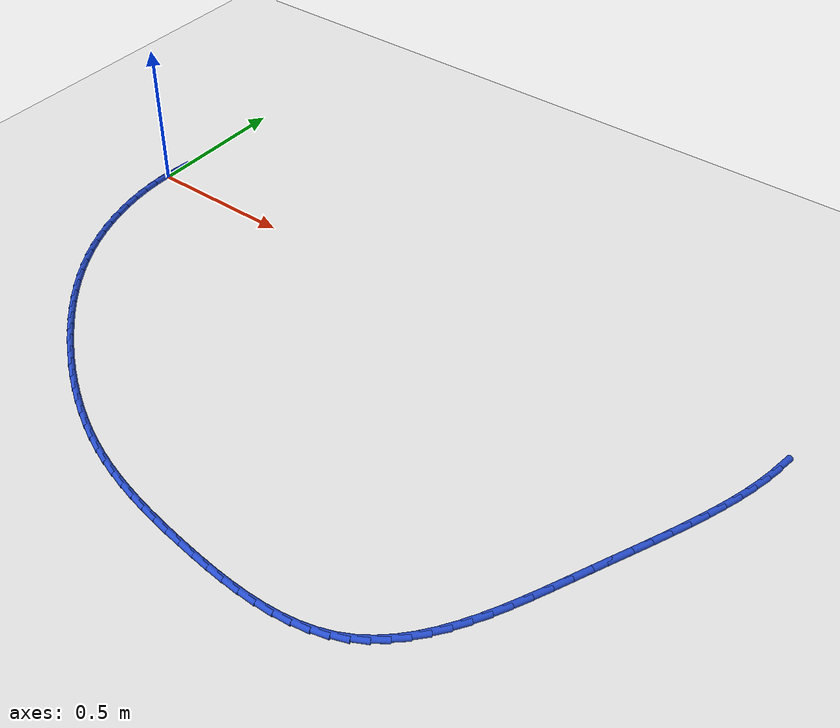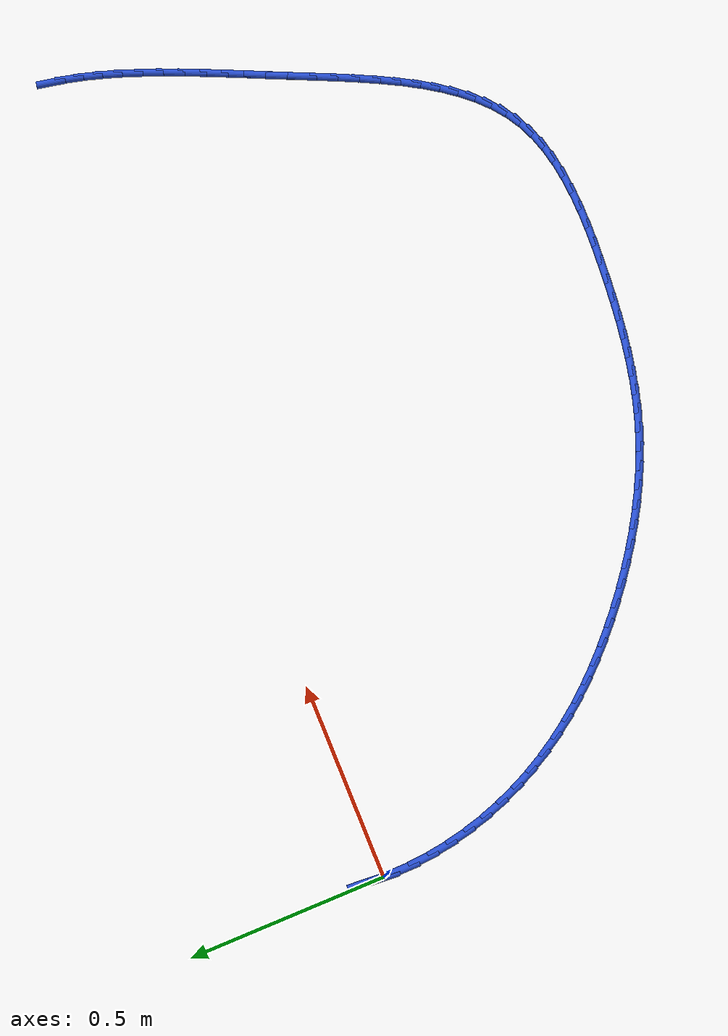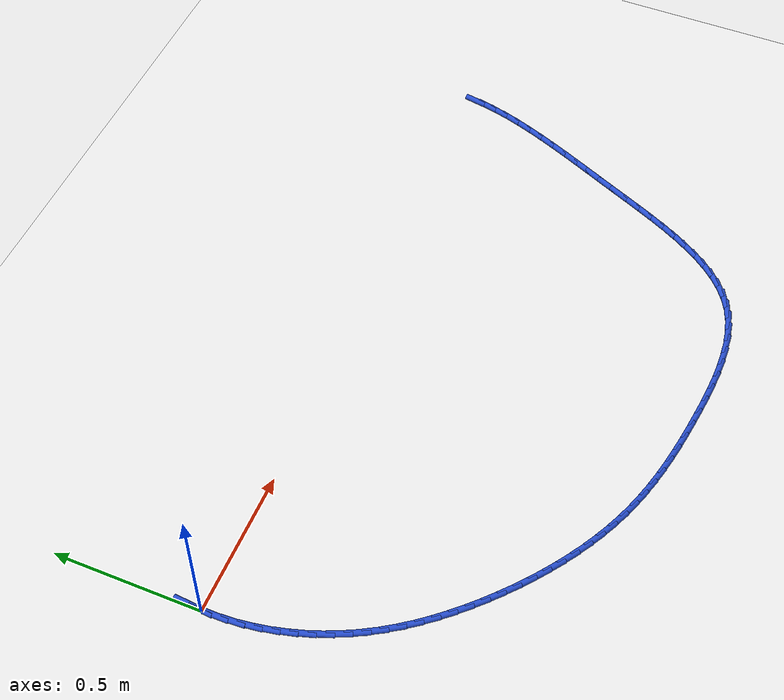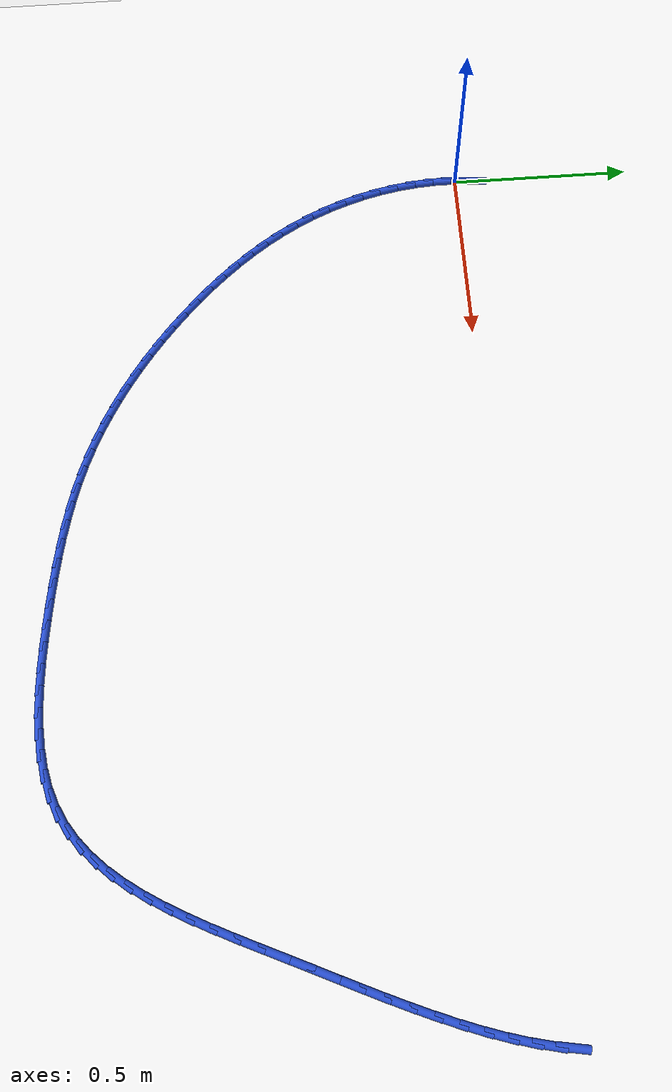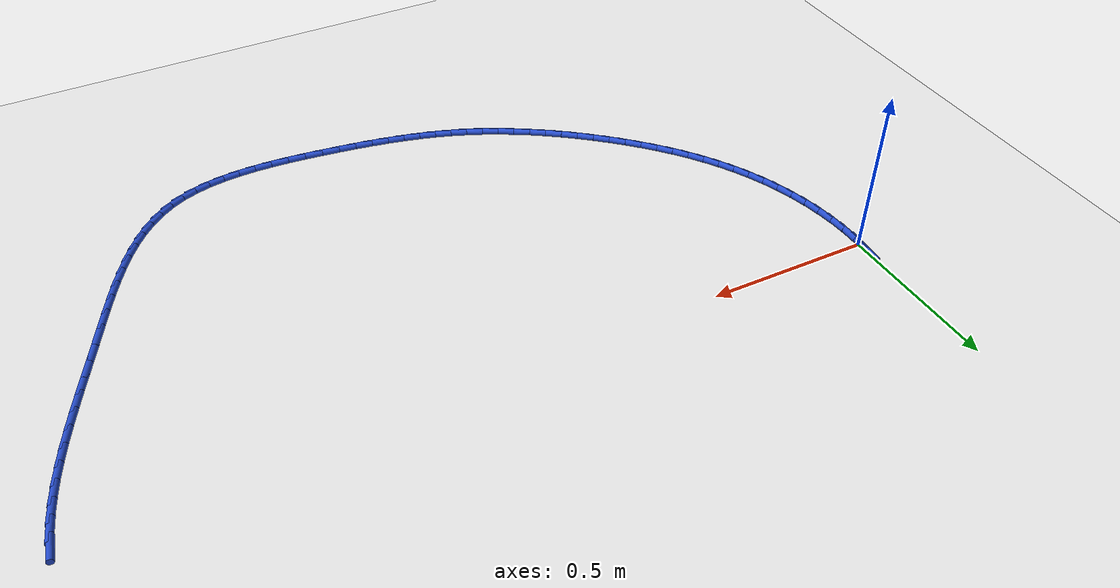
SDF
<sdf version="1.6">
 <world name="default">
  <model name="ground_plane">
   <static>1</static>
   <link name="link">
    <collision name="collision">
     <geometry><plane><normal>0 0 1</normal><size>100 100</size></plane></geometry>
     <surface><friction><ode><mu>100</mu><mu2>50</mu2></ode></friction></surface>
    </collision>
    <visual name="visual">
     <cast_shadows>0</cast_shadows>
     <geometry><plane><normal>0 0 1</normal><size>100 100</size></plane></geometry>
     <material>
      <script><uri>file://media/materials/scripts/gazebo.material</uri><name>Gazebo/WhiteGlow</name></script>
     </material>
    </visual>
   </link>
  </model>
  <model name="line">
   <link name="link_0">
    <pose>2.42861286636753e-17 1.249000902703301e-16 0.01 0 1.57 1.502286264619102</pose>
    <collision name="collision">
     <geometry><cylinder><radius>0.01</radius><length>0.08</length></cylinder></geometry>
    </collision>
    <visual name="visual">
     <material>
      <script><name>Gazebo/Blue</name><uri>file://media/materials/scripts/gazebo.material</uri></script>
     </material>
     <geometry><cylinder><radius>0.01</radius><length>0.08</length></cylinder></geometry>
    </visual>
   </link>
   <link name="link_72">
    <pose>2.3132417788690716 0.02636627715326527 0.01 0 1.57 1.3954809518263236</pose>
    <collision name="collision">
     <geometry><cylinder><radius>0.01</radius><length>0.08</length></cylinder></geometry>
    </collision>
    <visual name="visual">
     <material>
      <script><name>Gazebo/Blue</name><uri>file://media/materials/scripts/gazebo.material</uri></script>
     </material>
     <geometry><cylinder><radius>0.01</radius><length>0.08</length></cylinder></geometry>
    </visual>
   </link>
   <link name="link_73">
    <pose>2.3043299108060014 -0.023945208164076956 0.01 0 1.57 1.3374802903065772</pose>
    <collision name="collision">
     <geometry><cylinder><radius>0.01</radius><length>0.08</length></cylinder></geometry>
    </collision>
    <visual name="visual">
     <material>
      <script><name>Gazebo/Blue</name><uri>file://media/materials/scripts/gazebo.material</uri></script>
     </material>
     <geometry><cylinder><radius>0.01</radius><length>0.08</length></cylinder></geometry>
    </visual>
   </link>
   <link name="link_74">
    <pose>2.2921069334821587 -0.0753792068289258 0.01 0 1.57 1.2891854659725064</pose>
    <collision name="collision">
     <geometry><cylinder><radius>0.01</radius><length>0.08</length></cylinder></geometry>
    </collision>
    <visual name="visual">
     <material>
      <script><name>Gazebo/Blue</name><uri>file://media/materials/scripts/gazebo.material</uri></script>
     </material>
     <geometry><cylinder><radius>0.01</radius><length>0.08</length></cylinder></geometry>
    </visual>
   </link>
   <link name="link_75">
    <pose>2.2769422155082153 -0.12779801154724507 0.01 0 1.57 1.2493535060694492</pose>
    <collision name="collision">
     <geometry><cylinder><radius>0.01</radius><length>0.08</length></cylinder></geometry>
    </collision>
    <visual name="visual">
     <material>
      <script><name>Gazebo/Blue</name><uri>file://media/materials/scripts/gazebo.material</uri></script>
     </material>
     <geometry><cylinder><radius>0.01</radius><length>0.08</length></cylinder></geometry>
    </visual>
   </link>
   <link name="link_76">
    <pose>2.2592051254948413 -0.18106391502499786 0.01 0 1.57 1.2169178602378736</pose>
    <collision name="collision">
     <geometry><cylinder><radius>0.01</radius><length>0.08</length></cylinder></geometry>
    </collision>
    <visual name="visual">
     <material>
      <script><name>Gazebo/Blue</name><uri>file://media/materials/scripts/gazebo.material</uri></script>
     </material>
     <geometry><cylinder><radius>0.01</radius><length>0.08</length></cylinder></geometry>
    </visual>
   </link>
   <link name="link_77">
    <pose>2.2392650320527085 -0.23503920996814717 0.01 0 1.57 1.1910023412791821</pose>
    <collision name="collision">
     <geometry><cylinder><radius>0.01</radius><length>0.08</length></cylinder></geometry>
    </collision>
    <visual name="visual">
     <material>
      <script><name>Gazebo/Blue</name><uri>file://media/materials/scripts/gazebo.material</uri></script>
     </material>
     <geometry><cylinder><radius>0.01</radius><length>0.08</length></cylinder></geometry>
    </visual>
   </link>
   <link name="link_78">
    <pose>2.217491303792488 -0.28958618908265676 0.01 0 1.57 1.1709133052564993</pose>
    <collision name="collision">
     <geometry><cylinder><radius>0.01</radius><length>0.08</length></cylinder></geometry>
    </collision>
    <visual name="visual">
     <material>
      <script><name>Gazebo/Blue</name><uri>file://media/materials/scripts/gazebo.material</uri></script>
     </material>
     <geometry><cylinder><radius>0.01</radius><length>0.08</length></cylinder></geometry>
    </visual>
   </link>
   <link name="link_79">
    <pose>2.1942533093248504 -0.34456714507448793 0.01 0 1.57 1.1561240657351564</pose>
    <collision name="collision">
     <geometry><cylinder><radius>0.01</radius><length>0.08</length></cylinder></geometry>
    </collision>
    <visual name="visual">
     <material>
      <script><name>Gazebo/Blue</name><uri>file://media/materials/scripts/gazebo.material</uri></script>
     </material>
     <geometry><cylinder><radius>0.01</radius><length>0.08</length></cylinder></geometry>
    </visual>
   </link>
   <link name="link_80">
    <pose>2.169920417260469 -0.39984437064960454 0.01 0 1.57 1.1462588013819728</pose>
    <collision name="collision">
     <geometry><cylinder><radius>0.01</radius><length>0.08</length></cylinder></geometry>
    </collision>
    <visual name="visual">
     <material>
      <script><name>Gazebo/Blue</name><uri>file://media/materials/scripts/gazebo.material</uri></script>
     </material>
     <geometry><cylinder><radius>0.01</radius><length>0.08</length></cylinder></geometry>
    </visual>
   </link>
   <link name="link_81">
    <pose>2.1448619962100133 -0.45528015851396975 0.01 0 1.57 1.1410794474713768</pose>
    <collision name="collision">
     <geometry><cylinder><radius>0.01</radius><length>0.08</length></cylinder></geometry>
    </collision>
    <visual name="visual">
     <material>
      <script><name>Gazebo/Blue</name><uri>file://media/materials/scripts/gazebo.material</uri></script>
     </material>
     <geometry><cylinder><radius>0.01</radius><length>0.08</length></cylinder></geometry>
    </visual>
   </link>
   <link name="link_82">
    <pose>2.119447414784155 -0.5107368013735474 0.01 0 1.57 1.1404771448761992</pose>
    <collision name="collision">
     <geometry><cylinder><radius>0.01</radius><length>0.08</length></cylinder></geometry>
    </collision>
    <visual name="visual">
     <material>
      <script><name>Gazebo/Blue</name><uri>file://media/materials/scripts/gazebo.material</uri></script>
     </material>
     <geometry><cylinder><radius>0.01</radius><length>0.08</length></cylinder></geometry>
    </visual>
   </link>
   <link name="link_83">
    <pose>2.094046041593566 -0.5660765919342985 0.01 0 1.57 1.1437506375032513</pose>
    <collision name="collision">
     <geometry><cylinder><radius>0.01</radius><length>0.08</length></cylinder></geometry>
    </collision>
    <visual name="visual">
     <material>
      <script><name>Gazebo/Blue</name><uri>file://media/materials/scripts/gazebo.material</uri></script>
     </material>
     <geometry><cylinder><radius>0.01</radius><length>0.08</length></cylinder></geometry>
    </visual>
   </link>
   <link name="link_84">
    <pose>2.068986537868381 -0.6211463544181676 0.01 0 1.57 1.1438352347236482</pose>
    <collision name="collision">
     <geometry><cylinder><radius>0.01</radius><length>0.08</length></cylinder></geometry>
    </collision>
    <visual name="visual">
     <material>
      <script><name>Gazebo/Blue</name><uri>file://media/materials/scripts/gazebo.material</uri></script>
     </material>
     <geometry><cylinder><radius>0.01</radius><length>0.08</length></cylinder></geometry>
    </visual>
   </link>
   <link name="link_85">
    <pose>2.0441948185654875 -0.6756398726350197 0.01 0 1.57 1.1364705656015068</pose>
    <collision name="collision">
     <geometry><cylinder><radius>0.01</radius><length>0.08</length></cylinder></geometry>
    </collision>
    <visual name="visual">
     <material>
      <script><name>Gazebo/Blue</name><uri>file://media/materials/scripts/gazebo.material</uri></script>
     </material>
     <geometry><cylinder><radius>0.01</radius><length>0.08</length></cylinder></geometry>
    </visual>
   </link>
   <link name="link_86">
    <pose>2.019366931641542 -0.7291635827449101 0.01 0 1.57 1.1211870631974363</pose>
    <collision name="collision">
     <geometry><cylinder><radius>0.01</radius><length>0.08</length></cylinder></geometry>
    </collision>
    <visual name="visual">
     <material>
      <script><name>Gazebo/Blue</name><uri>file://media/materials/scripts/gazebo.material</uri></script>
     </material>
     <geometry><cylinder><radius>0.01</radius><length>0.08</length></cylinder></geometry>
    </visual>
   </link>
   <link name="link_87">
    <pose>1.9941962403137101 -0.7813229007280312 0.01 0 1.57 1.0973566188363908</pose>
    <collision name="collision">
     <geometry><cylinder><radius>0.01</radius><length>0.08</length></cylinder></geometry>
    </collision>
    <visual name="visual">
     <material>
      <script><name>Gazebo/Blue</name><uri>file://media/materials/scripts/gazebo.material</uri></script>
     </material>
     <geometry><cylinder><radius>0.01</radius><length>0.08</length></cylinder></geometry>
    </visual>
   </link>
   <link name="link_88">
    <pose>1.9683761077991582 -0.8317232425645725 0.01 0 1.57 1.064134388265504</pose>
    <collision name="collision">
     <geometry><cylinder><radius>0.01</radius><length>0.08</length></cylinder></geometry>
    </collision>
    <visual name="visual">
     <material>
      <script><name>Gazebo/Blue</name><uri>file://media/materials/scripts/gazebo.material</uri></script>
     </material>
     <geometry><cylinder><radius>0.01</radius><length>0.08</length></cylinder></geometry>
    </visual>
   </link>
   <link name="link_89">
    <pose>1.941599897315051 -0.8799700242347265 0.01 0 1.57 1.0204647552105088</pose>
    <collision name="collision">
     <geometry><cylinder><radius>0.01</radius><length>0.08</length></cylinder></geometry>
    </collision>
    <visual name="visual">
     <material>
      <script><name>Gazebo/Blue</name><uri>file://media/materials/scripts/gazebo.material</uri></script>
     </material>
     <geometry><cylinder><radius>0.01</radius><length>0.08</length></cylinder></geometry>
    </visual>
   </link>
   <link name="link_90">
    <pose>1.913560972078554 -0.925668661718684 0.01 0 1.57 0.9651246847590658</pose>
    <collision name="collision">
     <geometry><cylinder><radius>0.01</radius><length>0.08</length></cylinder></geometry>
    </collision>
    <visual name="visual">
     <material>
      <script><name>Gazebo/Blue</name><uri>file://media/materials/scripts/gazebo.material</uri></script>
     </material>
     <geometry><cylinder><radius>0.01</radius><length>0.08</length></cylinder></geometry>
    </visual>
   </link>
   <link name="link_91">
    <pose>1.8839526953068322 -0.968424570996638 0.01 0 1.57 0.8968387875746343</pose>
    <collision name="collision">
     <geometry><cylinder><radius>0.01</radius><length>0.08</length></cylinder></geometry>
    </collision>
    <visual name="visual">
     <material>
      <script><name>Gazebo/Blue</name><uri>file://media/materials/scripts/gazebo.material</uri></script>
     </material>
     <geometry><cylinder><radius>0.01</radius><length>0.08</length></cylinder></geometry>
    </visual>
   </link>
   <link name="link_92">
    <pose>1.8524684302170527 -1.0078431680487778 0.01 0 1.57 0.814513308395862</pose>
    <collision name="collision">
     <geometry><cylinder><radius>0.01</radius><length>0.08</length></cylinder></geometry>
    </collision>
    <visual name="visual">
     <material>
      <script><name>Gazebo/Blue</name><uri>file://media/materials/scripts/gazebo.material</uri></script>
     </material>
     <geometry><cylinder><radius>0.01</radius><length>0.08</length></cylinder></geometry>
    </visual>
   </link>
   <link name="link_93">
    <pose>1.8188015400263784 -1.0435298688552954 0.01 0 1.57 0.7176317735627801</pose>
    <collision name="collision">
     <geometry><cylinder><radius>0.01</radius><length>0.08</length></cylinder></geometry>
    </collision>
    <visual name="visual">
     <material>
      <script><name>Gazebo/Blue</name><uri>file://media/materials/scripts/gazebo.material</uri></script>
     </material>
     <geometry><cylinder><radius>0.01</radius><length>0.08</length></cylinder></geometry>
    </visual>
   </link>
   <link name="link_94">
    <pose>1.782645387951977 -1.075090089396383 0.01 0 1.57 0.6067992156913515</pose>
    <collision name="collision">
     <geometry><cylinder><radius>0.01</radius><length>0.08</length></cylinder></geometry>
    </collision>
    <visual name="visual">
     <material>
      <script><name>Gazebo/Blue</name><uri>file://media/materials/scripts/gazebo.material</uri></script>
     </material>
     <geometry><cylinder><radius>0.01</radius><length>0.08</length></cylinder></geometry>
    </visual>
   </link>
   <link name="link_95">
    <pose>1.7436933372110122 -1.1021292456522316 0.01 0 1.57 0.4842849290200689</pose>
    <collision name="collision">
     <geometry><cylinder><radius>0.01</radius><length>0.08</length></cylinder></geometry>
    </collision>
    <visual name="visual">
     <material>
      <script><name>Gazebo/Blue</name><uri>file://media/materials/scripts/gazebo.material</uri></script>
     </material>
     <geometry><cylinder><radius>0.01</radius><length>0.08</length></cylinder></geometry>
    </visual>
   </link>
   <link name="link_96">
    <pose>1.7016388225276926 -1.124252836935228 0.01 0 1.57 0.3591166905997008</pose>
    <collision name="collision">
     <geometry><cylinder><radius>0.01</radius><length>0.08</length></cylinder></geometry>
    </collision>
    <visual name="visual">
     <material>
      <script><name>Gazebo/Blue</name><uri>file://media/materials/scripts/gazebo.material</uri></script>
     </material>
     <geometry><cylinder><radius>0.01</radius><length>0.08</length></cylinder></geometry>
    </visual>
   </link>
   <link name="link_97">
    <pose>1.6563396444833514 -1.141257909676891 0.01 0 1.57 0.2496820367132497</pose>
    <collision name="collision">
     <geometry><cylinder><radius>0.01</radius><length>0.08</length></cylinder></geometry>
    </collision>
    <visual name="visual">
     <material>
      <script><name>Gazebo/Blue</name><uri>file://media/materials/scripts/gazebo.material</uri></script>
     </material>
     <geometry><cylinder><radius>0.01</radius><length>0.08</length></cylinder></geometry>
    </visual>
   </link>
   <link name="link_98">
    <pose>1.6081686077029633 -1.1535416808223988 0.01 0 1.57 0.15838147728008006</pose>
    <collision name="collision">
     <geometry><cylinder><radius>0.01</radius><length>0.08</length></cylinder></geometry>
    </collision>
    <visual name="visual">
     <material>
      <script><name>Gazebo/Blue</name><uri>file://media/materials/scripts/gazebo.material</uri></script>
     </material>
     <geometry><cylinder><radius>0.01</radius><length>0.08</length></cylinder></geometry>
    </visual>
   </link>
   <link name="link_99">
    <pose>1.5575991143959245 -1.161618600772979 0.01 0 1.57 0.08332991020287756</pose>
    <collision name="collision">
     <geometry><cylinder><radius>0.01</radius><length>0.08</length></cylinder></geometry>
    </collision>
    <visual name="visual">
     <material>
      <script><name>Gazebo/Blue</name><uri>file://media/materials/scripts/gazebo.material</uri></script>
     </material>
     <geometry><cylinder><radius>0.01</radius><length>0.08</length></cylinder></geometry>
    </visual>
   </link>
   <link name="link_100">
    <pose>1.5051045667716298 -1.1660031199298584 0.01 0 1.57 0.02236242103384555</pose>
    <collision name="collision">
     <geometry><cylinder><radius>0.01</radius><length>0.08</length></cylinder></geometry>
    </collision>
    <visual name="visual">
     <material>
      <script><name>Gazebo/Blue</name><uri>file://media/materials/scripts/gazebo.material</uri></script>
     </material>
     <geometry><cylinder><radius>0.01</radius><length>0.08</length></cylinder></geometry>
    </visual>
   </link>
   <link name="link_101">
    <pose>1.4511583670394768 -1.1672096886942647 0.01 0 1.57 -0.026519877131066245</pose>
    <collision name="collision">
     <geometry><cylinder><radius>0.01</radius><length>0.08</length></cylinder></geometry>
    </collision>
    <visual name="visual">
     <material>
      <script><name>Gazebo/Blue</name><uri>file://media/materials/scripts/gazebo.material</uri></script>
     </material>
     <geometry><cylinder><radius>0.01</radius><length>0.08</length></cylinder></geometry>
    </visual>
   </link>
   <link name="link_102">
    <pose>1.3962339174088603 -1.165752757467424 0.01 0 1.57 -0.06496395895952128</pose>
    <collision name="collision">
     <geometry><cylinder><radius>0.01</radius><length>0.08</length></cylinder></geometry>
    </collision>
    <visual name="visual">
     <material>
      <script><name>Gazebo/Blue</name><uri>file://media/materials/scripts/gazebo.material</uri></script>
     </material>
     <geometry><cylinder><radius>0.01</radius><length>0.08</length></cylinder></geometry>
    </visual>
   </link>
   <link name="link_103">
    <pose>1.3408046200891761 -1.1621467766505644 0.01 0 1.57 -0.09421197071604645</pose>
    <collision name="collision">
     <geometry><cylinder><radius>0.01</radius><length>0.08</length></cylinder></geometry>
    </collision>
    <visual name="visual">
     <material>
      <script><name>Gazebo/Blue</name><uri>file://media/materials/scripts/gazebo.material</uri></script>
     </material>
     <geometry><cylinder><radius>0.01</radius><length>0.08</length></cylinder></geometry>
    </visual>
   </link>
   <link name="link_104">
    <pose>1.2853438772898191 -1.1569061966449121 0.01 0 1.57 -0.11509914746075227</pose>
    <collision name="collision">
     <geometry><cylinder><radius>0.01</radius><length>0.08</length></cylinder></geometry>
    </collision>
    <visual name="visual">
     <material>
      <script><name>Gazebo/Blue</name><uri>file://media/materials/scripts/gazebo.material</uri></script>
     </material>
     <geometry><cylinder><radius>0.01</radius><length>0.08</length></cylinder></geometry>
    </visual>
   </link>
   <link name="link_105">
    <pose>1.2303250912201875 -1.1505454678516953 0.01 0 1.57 -0.12960272391324787</pose>
    <collision name="collision">
     <geometry><cylinder><radius>0.01</radius><length>0.08</length></cylinder></geometry>
    </collision>
    <visual name="visual">
     <material>
      <script><name>Gazebo/Blue</name><uri>file://media/materials/scripts/gazebo.material</uri></script>
     </material>
     <geometry><cylinder><radius>0.01</radius><length>0.08</length></cylinder></geometry>
    </visual>
   </link>
   <link name="link_106">
    <pose>1.17615592100883 -1.143485422627199 0.01 0 1.57 -0.1458395893285195</pose>
    <collision name="collision">
     <geometry><cylinder><radius>0.01</radius><length>0.08</length></cylinder></geometry>
    </collision>
    <visual name="visual">
     <material>
      <script><name>Gazebo/Blue</name><uri>file://media/materials/scripts/gazebo.material</uri></script>
     </material>
     <geometry><cylinder><radius>0.01</radius><length>0.08</length></cylinder></geometry>
    </visual>
   </link>
   <link name="link_107">
    <pose>1.1229047471289777 -1.1356637610498665 0.01 0 1.57 -0.16648574411661318</pose>
    <collision name="collision">
     <geometry><cylinder><radius>0.01</radius><length>0.08</length></cylinder></geometry>
    </collision>
    <visual name="visual">
     <material>
      <script><name>Gazebo/Blue</name><uri>file://media/materials/scripts/gazebo.material</uri></script>
     </material>
     <geometry><cylinder><radius>0.01</radius><length>0.08</length></cylinder></geometry>
    </visual>
   </link>
   <link name="link_108">
    <pose>1.0705308218298983 -1.126862784776831 0.01 0 1.57 -0.1916158530445746</pose>
    <collision name="collision">
     <geometry><cylinder><radius>0.01</radius><length>0.08</length></cylinder></geometry>
    </collision>
    <visual name="visual">
     <material>
      <script><name>Gazebo/Blue</name><uri>file://media/materials/scripts/gazebo.material</uri></script>
     </material>
     <geometry><cylinder><radius>0.01</radius><length>0.08</length></cylinder></geometry>
    </visual>
   </link>
   <link name="link_109">
    <pose>1.0189933455149043 -1.116864721636668 0.01 0 1.57 -0.22123961773968273</pose>
    <collision name="collision">
     <geometry><cylinder><radius>0.01</radius><length>0.08</length></cylinder></geometry>
    </collision>
    <visual name="visual">
     <material>
      <script><name>Gazebo/Blue</name><uri>file://media/materials/scripts/gazebo.material</uri></script>
     </material>
     <geometry><cylinder><radius>0.01</radius><length>0.08</length></cylinder></geometry>
    </visual>
   </link>
   <link name="link_110">
    <pose>0.9682515185873097 -1.105451799457953 0.01 0 1.57 -0.2552848888326911</pose>
    <collision name="collision">
     <geometry><cylinder><radius>0.01</radius><length>0.08</length></cylinder></geometry>
    </collision>
    <visual name="visual">
     <material>
      <script><name>Gazebo/Blue</name><uri>file://media/materials/scripts/gazebo.material</uri></script>
     </material>
     <geometry><cylinder><radius>0.01</radius><length>0.08</length></cylinder></geometry>
    </visual>
   </link>
   <link name="link_111">
    <pose>0.9182645414504276 -1.0924062460692618 0.01 0 1.57 -0.2935795127065285</pose>
    <collision name="collision">
     <geometry><cylinder><radius>0.01</radius><length>0.08</length></cylinder></geometry>
    </collision>
    <visual name="visual">
     <material>
      <script><name>Gazebo/Blue</name><uri>file://media/materials/scripts/gazebo.material</uri></script>
     </material>
     <geometry><cylinder><radius>0.01</radius><length>0.08</length></cylinder></geometry>
    </visual>
   </link>
   <link name="link_112">
    <pose>0.8689916145075708 -1.0775102892991693 0.01 0 1.57 -0.3358358608013091</pose>
    <collision name="collision">
     <geometry><cylinder><radius>0.01</radius><length>0.08</length></cylinder></geometry>
    </collision>
    <visual name="visual">
     <material>
      <script><name>Gazebo/Blue</name><uri>file://media/materials/scripts/gazebo.material</uri></script>
     </material>
     <geometry><cylinder><radius>0.01</radius><length>0.08</length></cylinder></geometry>
    </visual>
   </link>
   <link name="link_113">
    <pose>0.8203919381620521 -1.0605461569762509 0.01 0 1.57 -0.38125026860275857</pose>
    <collision name="collision">
     <geometry><cylinder><radius>0.01</radius><length>0.08</length></cylinder></geometry>
    </collision>
    <visual name="visual">
     <material>
      <script><name>Gazebo/Blue</name><uri>file://media/materials/scripts/gazebo.material</uri></script>
     </material>
     <geometry><cylinder><radius>0.01</radius><length>0.08</length></cylinder></geometry>
    </visual>
   </link>
   <link name="link_114">
    <pose>0.7724314255342196 -1.0413205537952213 0.01 0 1.57 -0.4261205689249158</pose>
    <collision name="collision">
     <geometry><cylinder><radius>0.01</radius><length>0.08</length></cylinder></geometry>
    </collision>
    <visual name="visual">
     <material>
      <script><name>Gazebo/Blue</name><uri>file://media/materials/scripts/gazebo.material</uri></script>
     </material>
     <geometry><cylinder><radius>0.01</radius><length>0.08</length></cylinder></geometry>
    </visual>
   </link>
   <link name="link_115">
    <pose>0.7251336672103683 -1.0198504962524255 0.01 0 1.57 -0.46877521096440844</pose>
    <collision name="collision">
     <geometry><cylinder><radius>0.01</radius><length>0.08</length></cylinder></geometry>
    </collision>
    <visual name="visual">
     <material>
      <script><name>Gazebo/Blue</name><uri>file://media/materials/scripts/gazebo.material</uri></script>
     </material>
     <geometry><cylinder><radius>0.01</radius><length>0.08</length></cylinder></geometry>
    </visual>
   </link>
   <link name="link_116">
    <pose>0.6785516374145294 -0.9962601436544744 0.01 0 1.57 -0.5093294495706918</pose>
    <collision name="collision">
     <geometry><cylinder><radius>0.01</radius><length>0.08</length></cylinder></geometry>
    </collision>
    <visual name="visual">
     <material>
      <script><name>Gazebo/Blue</name><uri>file://media/materials/scripts/gazebo.material</uri></script>
     </material>
     <geometry><cylinder><radius>0.01</radius><length>0.08</length></cylinder></geometry>
    </visual>
   </link>
   <link name="link_117">
    <pose>0.6327385439911715 -0.9706745071681363 0.01 0 1.57 -0.5479251508569543</pose>
    <collision name="collision">
     <geometry><cylinder><radius>0.01</radius><length>0.08</length></cylinder></geometry>
    </collision>
    <visual name="visual">
     <material>
      <script><name>Gazebo/Blue</name><uri>file://media/materials/scripts/gazebo.material</uri></script>
     </material>
     <geometry><cylinder><radius>0.01</radius><length>0.08</length></cylinder></geometry>
    </visual>
   </link>
   <link name="link_118">
    <pose>0.5877475947847661 -0.9432185979601824 0.01 0 1.57 -0.5847120001970137</pose>
    <collision name="collision">
     <geometry><cylinder><radius>0.01</radius><length>0.08</length></cylinder></geometry>
    </collision>
    <visual name="visual">
     <material>
      <script><name>Gazebo/Blue</name><uri>file://media/materials/scripts/gazebo.material</uri></script>
     </material>
     <geometry><cylinder><radius>0.01</radius><length>0.08</length></cylinder></geometry>
    </visual>
   </link>
   <link name="link_119">
    <pose>0.543631997639782 -0.9140174271973813 0.01 0 1.57 -0.6198436325937404</pose>
    <collision name="collision">
     <geometry><cylinder><radius>0.01</radius><length>0.08</length></cylinder></geometry>
    </collision>
    <visual name="visual">
     <material>
      <script><name>Gazebo/Blue</name><uri>file://media/materials/scripts/gazebo.material</uri></script>
     </material>
     <geometry><cylinder><radius>0.01</radius><length>0.08</length></cylinder></geometry>
    </visual>
   </link>
   <link name="link_120">
    <pose>0.5004449604006888 -0.883196006046503 0.01 0 1.57 -0.6534749002688487</pose>
    <collision name="collision">
     <geometry><cylinder><radius>0.01</radius><length>0.08</length></cylinder></geometry>
    </collision>
    <visual name="visual">
     <material>
      <script><name>Gazebo/Blue</name><uri>file://media/materials/scripts/gazebo.material</uri></script>
     </material>
     <geometry><cylinder><radius>0.01</radius><length>0.08</length></cylinder></geometry>
    </visual>
   </link>
   <link name="link_121">
    <pose>0.45823969091195654 -0.8508793456743171 0.01 0 1.57 -0.6857601007996721</pose>
    <collision name="collision">
     <geometry><cylinder><radius>0.01</radius><length>0.08</length></cylinder></geometry>
    </collision>
    <visual name="visual">
     <material>
      <script><name>Gazebo/Blue</name><uri>file://media/materials/scripts/gazebo.material</uri></script>
     </material>
     <geometry><cylinder><radius>0.01</radius><length>0.08</length></cylinder></geometry>
    </visual>
   </link>
   <link name="link_122">
    <pose>0.41706939701805407 -0.8171924572475927 0.01 0 1.57 -0.7168519996883419</pose>
    <collision name="collision">
     <geometry><cylinder><radius>0.01</radius><length>0.08</length></cylinder></geometry>
    </collision>
    <visual name="visual">
     <material>
      <script><name>Gazebo/Blue</name><uri>file://media/materials/scripts/gazebo.material</uri></script>
     </material>
     <geometry><cylinder><radius>0.01</radius><length>0.08</length></cylinder></geometry>
    </visual>
   </link>
   <link name="link_123">
    <pose>0.3769872865634523 -0.7822603519331003 0.01 0 1.57 -0.7475368295588911</pose>
    <collision name="collision">
     <geometry><cylinder><radius>0.01</radius><length>0.08</length></cylinder></geometry>
    </collision>
    <visual name="visual">
     <material>
      <script><name>Gazebo/Blue</name><uri>file://media/materials/scripts/gazebo.material</uri></script>
     </material>
     <geometry><cylinder><radius>0.01</radius><length>0.08</length></cylinder></geometry>
    </visual>
   </link>
   <link name="link_124">
    <pose>0.33806459211051043 -0.7461787768608925 0.01 0 1.57 -0.7805819021315046</pose>
    <collision name="collision">
     <geometry><cylinder><radius>0.01</radius><length>0.08</length></cylinder></geometry>
    </collision>
    <visual name="visual">
     <material>
      <script><name>Gazebo/Blue</name><uri>file://media/materials/scripts/gazebo.material</uri></script>
     </material>
     <geometry><cylinder><radius>0.01</radius><length>0.08</length></cylinder></geometry>
    </visual>
   </link>
   <link name="link_125">
    <pose>0.3004473047837727 -0.7089221048725587 0.01 0 1.57 -0.8167717599863569</pose>
    <collision name="collision">
     <geometry><cylinder><radius>0.01</radius><length>0.08</length></cylinder></geometry>
    </collision>
    <visual name="visual">
     <material>
      <script><name>Gazebo/Blue</name><uri>file://media/materials/scripts/gazebo.material</uri></script>
     </material>
     <geometry><cylinder><radius>0.01</radius><length>0.08</length></cylinder></geometry>
    </visual>
   </link>
   <link name="link_126">
    <pose>0.2643007946171548 -0.6704332461749402 0.01 0 1.57 -0.856189334038984</pose>
    <collision name="collision">
     <geometry><cylinder><radius>0.01</radius><length>0.08</length></cylinder></geometry>
    </collision>
    <visual name="visual">
     <material>
      <script><name>Gazebo/Blue</name><uri>file://media/materials/scripts/gazebo.material</uri></script>
     </material>
     <geometry><cylinder><radius>0.01</radius><length>0.08</length></cylinder></geometry>
    </visual>
   </link>
   <link name="link_127">
    <pose>0.2297904316774792 -0.630655110921458 0.01 0 1.57 -0.8988901400199131</pose>
    <collision name="collision">
     <geometry><cylinder><radius>0.01</radius><length>0.08</length></cylinder></geometry>
    </collision>
    <visual name="visual">
     <material>
      <script><name>Gazebo/Blue</name><uri>file://media/materials/scripts/gazebo.material</uri></script>
     </material>
     <geometry><cylinder><radius>0.01</radius><length>0.08</length></cylinder></geometry>
    </visual>
   </link>
   <link name="link_128">
    <pose>0.19708158603156645 -0.5895306092655312 0.01 0 1.57 -0.9448891976477524</pose>
    <collision name="collision">
     <geometry><cylinder><radius>0.01</radius><length>0.08</length></cylinder></geometry>
    </collision>
    <visual name="visual">
     <material>
      <script><name>Gazebo/Blue</name><uri>file://media/materials/scripts/gazebo.material</uri></script>
     </material>
     <geometry><cylinder><radius>0.01</radius><length>0.08</length></cylinder></geometry>
    </visual>
   </link>
   <link name="link_129">
    <pose>0.16633962774623762 -0.5470026513605796 0.01 0 1.57 -0.9941467064371904</pose>
    <collision name="collision">
     <geometry><cylinder><radius>0.01</radius><length>0.08</length></cylinder></geometry>
    </collision>
    <visual name="visual">
     <material>
      <script><name>Gazebo/Blue</name><uri>file://media/materials/scripts/gazebo.material</uri></script>
     </material>
     <geometry><cylinder><radius>0.01</radius><length>0.08</length></cylinder></geometry>
    </visual>
   </link>
   <link name="link_130">
    <pose>0.13772992688831392 -0.5030141473600226 0.01 0 1.57 -1.0465535170530322</pose>
    <collision name="collision">
     <geometry><cylinder><radius>0.01</radius><length>0.08</length></cylinder></geometry>
    </collision>
    <visual name="visual">
     <material>
      <script><name>Gazebo/Blue</name><uri>file://media/materials/scripts/gazebo.material</uri></script>
     </material>
     <geometry><cylinder><radius>0.01</radius><length>0.08</length></cylinder></geometry>
    </visual>
   </link>
   <link name="link_131">
    <pose>0.11141785352461603 -0.45750800741727904 0.01 0 1.57 -1.1018503047279644</pose>
    <collision name="collision">
     <geometry><cylinder><radius>0.01</radius><length>0.08</length></cylinder></geometry>
    </collision>
    <visual name="visual">
     <material>
      <script><name>Gazebo/Blue</name><uri>file://media/materials/scripts/gazebo.material</uri></script>
     </material>
     <geometry><cylinder><radius>0.01</radius><length>0.08</length></cylinder></geometry>
    </visual>
   </link>
   <link name="link_132">
    <pose>0.08756773760098097 -0.41043299490921176 0.01 0 1.57 -1.1583006768101882</pose>
    <collision name="collision">
     <geometry><cylinder><radius>0.01</radius><length>0.08</length></cylinder></geometry>
    </collision>
    <visual name="visual">
     <material>
      <script><name>Gazebo/Blue</name><uri>file://media/materials/scripts/gazebo.material</uri></script>
     </material>
     <geometry><cylinder><radius>0.01</radius><length>0.08</length></cylinder></geometry>
    </visual>
   </link>
   <link name="link_133">
    <pose>0.06631929422409125 -0.36187639186157455 0.01 0 1.57 -1.214611313812482</pose>
    <collision name="collision">
     <geometry><cylinder><radius>0.01</radius><length>0.08</length></cylinder></geometry>
    </collision>
    <visual name="visual">
     <material>
      <script><name>Gazebo/Blue</name><uri>file://media/materials/scripts/gazebo.material</uri></script>
     </material>
     <geometry><cylinder><radius>0.01</radius><length>0.08</length></cylinder></geometry>
    </visual>
   </link>
   <link name="link_134">
    <pose>0.047787232934041746 -0.3120661977460942 0.01 0 1.57 -1.2711791236964227</pose>
    <collision name="collision">
     <geometry><cylinder><radius>0.01</radius><length>0.08</length></cylinder></geometry>
    </collision>
    <visual name="visual">
     <material>
      <script><name>Gazebo/Blue</name><uri>file://media/materials/scripts/gazebo.material</uri></script>
     </material>
     <geometry><cylinder><radius>0.01</radius><length>0.08</length></cylinder></geometry>
    </visual>
   </link>
   <link name="link_135">
    <pose>0.032085144998378876 -0.2612367050515467 0.01 0 1.57 -1.3284652934078514</pose>
    <collision name="collision">
     <geometry><cylinder><radius>0.01</radius><length>0.08</length></cylinder></geometry>
    </collision>
    <visual name="visual">
     <material>
      <script><name>Gazebo/Blue</name><uri>file://media/materials/scripts/gazebo.material</uri></script>
     </material>
     <geometry><cylinder><radius>0.01</radius><length>0.08</length></cylinder></geometry>
    </visual>
   </link>
   <link name="link_136">
    <pose>0.019326621684649707 -0.20962220626671021 0.01 0 1.57 -1.3869230640741805</pose>
    <collision name="collision">
     <geometry><cylinder><radius>0.01</radius><length>0.08</length></cylinder></geometry>
    </collision>
    <visual name="visual">
     <material>
      <script><name>Gazebo/Blue</name><uri>file://media/materials/scripts/gazebo.material</uri></script>
     </material>
     <geometry><cylinder><radius>0.01</radius><length>0.08</length></cylinder></geometry>
    </visual>
   </link>
   <link name="link_137">
    <pose>0.009625254260400621 -0.15745699388036066 0.01 0 1.57 -1.4469963988313963</pose>
    <collision name="collision">
     <geometry><cylinder><radius>0.01</radius><length>0.08</length></cylinder></geometry>
    </collision>
    <visual name="visual">
     <material>
      <script><name>Gazebo/Blue</name><uri>file://media/materials/scripts/gazebo.material</uri></script>
     </material>
     <geometry><cylinder><radius>0.01</radius><length>0.08</length></cylinder></geometry>
    </visual>
   </link>
   <link name="link_138">
    <pose>0.0030946339931782318 -0.10497536038127475 0.01 0 1.57 -1.5091157345836075</pose>
    <collision name="collision">
     <geometry><cylinder><radius>0.01</radius><length>0.08</length></cylinder></geometry>
    </collision>
    <visual name="visual">
     <material>
      <script><name>Gazebo/Blue</name><uri>file://media/materials/scripts/gazebo.material</uri></script>
     </material>
     <geometry><cylinder><radius>0.01</radius><length>0.08</length></cylinder></geometry>
    </visual>
   </link>
   <link name="link_139">
    <pose>-0.00015164784947085605 -0.052411598258229115 0.01 0 1.57 1.5679029323683717</pose>
    <collision name="collision">
     <geometry><cylinder><radius>0.01</radius><length>0.08</length></cylinder></geometry>
    </collision>
    <visual name="visual">
     <material>
      <script><name>Gazebo/Blue</name><uri>file://media/materials/scripts/gazebo.material</uri></script>
     </material>
     <geometry><cylinder><radius>0.01</radius><length>0.08</length></cylinder></geometry>
    </visual>
   </link>
   <link name="link_140">
    <pose>2.0816681711721685e-17 3.3306690738754696e-16 0.01 0 1.57 1.5005008333032301</pose>
    <collision name="collision">
     <geometry><cylinder><radius>0.01</radius><length>0.08</length></cylinder></geometry>
    </collision>
    <visual name="visual">
     <material>
      <script><name>Gazebo/Blue</name><uri>file://media/materials/scripts/gazebo.material</uri></script>
     </material>
     <geometry><cylinder><radius>0.01</radius><length>0.08</length></cylinder></geometry>
    </visual>
   </link>
   <link name="link_141">
    <pose>0.003663168809137453 0.052025141904635294 0.01 0 1.57 1.5005008333032304</pose>
    <collision name="collision">
     <geometry><cylinder><radius>0.01</radius><length>0.08</length></cylinder></geometry>
    </collision>
    <visual name="visual">
     <material>
      <script><name>Gazebo/Blue</name><uri>file://media/materials/scripts/gazebo.material</uri></script>
     </material>
     <geometry><cylinder><radius>0.01</radius><length>0.08</length></cylinder></geometry>
    </visual>
   </link>
  </model>
 </world>
</sdf>
